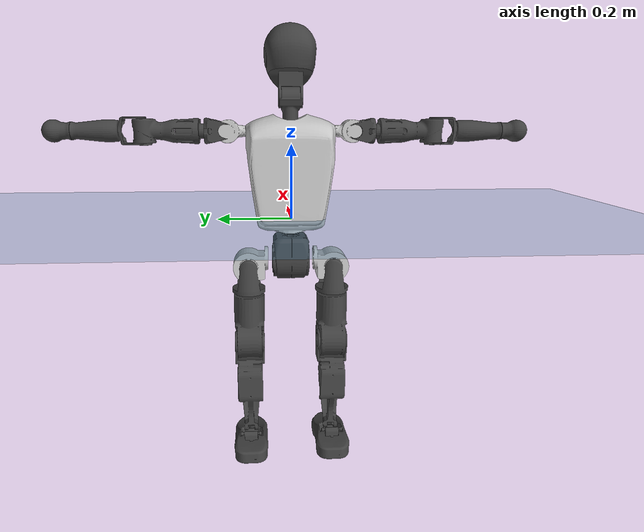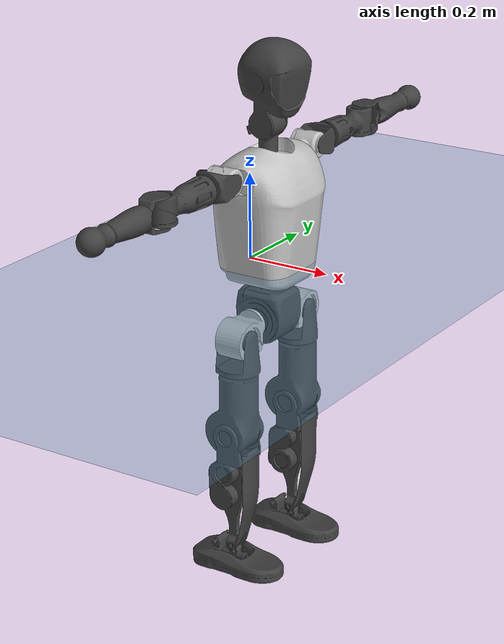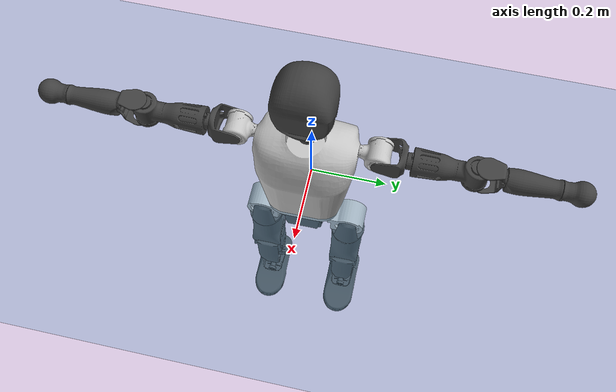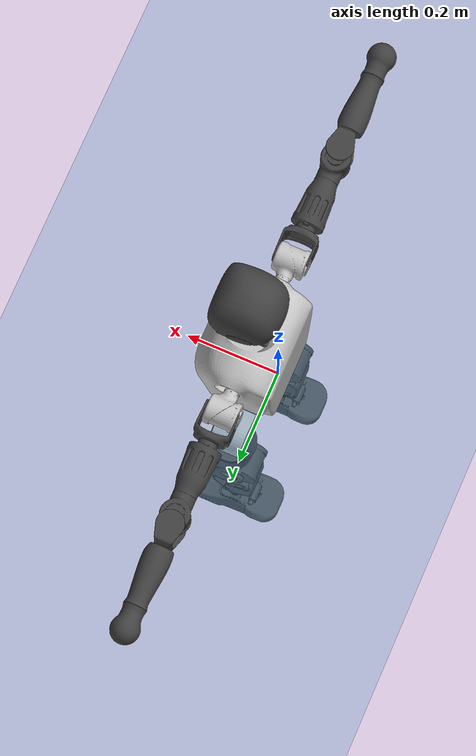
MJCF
<mujoco model="T1">
  <compiler angle="radian" assetdir="assets" balanceinertia="true" inertiafromgeom="false"/>

  <option timestep="0.005" density="1.2" viscosity="2e-05"/>

  <size nkey="1"/>

  <visual>
    <quality shadowsize="8192"/>
    <map shadowclip="0.5"/>
  </visual>

  <default>
    <default class="/">
      <joint armature="0.01" damping="0.01" frictionloss="0.1"/>
      <geom contype="0" conaffinity="0" group="1" solref="-1000 -80"/>
      <site size="0.01 0.005 0.005" group="5"/>
      <general forcelimited="true" biastype="affine" gainprm="25" biasprm="0 -25 -0.6"/>
      <default class="t1">
        <geom rgba="0.25 0.25 0.25 1"/>
        <default class="visual">
          <geom type="mesh" group="2"/>
        </default>
        <default class="collision">
          <geom group="3"/>
        </default>
        <default class="foot">
          <geom size="0.1115 0.05 0.015" type="box" condim="6" group="4" priority="1" solimp="0.015 1 0.015"/>
        </default>
        <default class="reward_collision_sphere">
          <geom group="5" rgba="1 0 0 1"/>
        </default>
      </default>
    </default>
  </default>

  <asset>
    <texture type="skybox" colorspace="auto" name="//unnamed_texture_0" builtin="gradient" rgb1="0.95 0.95 0.95" rgb2="0.95 0.95 0.95" width="100" height="600"/>
    <texture type="2d" colorspace="auto" name="texplane" builtin="checker" rgb1="0.345 0.575 0.748" rgb2="0.345 0.575 0.748" markrgb="1 1 1" width="512" height="512"/>
    <material name="MatPlane" class="/" texture="texplane" texuniform="true" texrepeat="2 2" specular="0.9"/>
    <mesh name="Trunk" class="/" file="Trunk.stl"/>
    <mesh name="H1" class="/" file="H1.stl"/>
    <mesh name="H2" class="/" file="H2.stl"/>
    <mesh name="AL1" class="/" file="AL1.stl"/>
    <mesh name="AL2" class="/" file="AL2.stl"/>
    <mesh name="AL3" class="/" file="AL3.stl"/>
    <mesh name="left_hand_link" class="/" file="left_hand_link.stl"/>
    <mesh name="AR1" class="/" file="AR1.stl"/>
    <mesh name="AR2" class="/" file="AR2.stl"/>
    <mesh name="AR3" class="/" file="AR3.stl"/>
    <mesh name="right_hand_link" class="/" file="right_hand_link.stl"/>
    <mesh name="Waist" class="/" file="Waist.stl"/>
    <mesh name="Hip_Pitch_Left" class="/" file="Hip_Pitch_Left.stl"/>
    <mesh name="Hip_Roll_Left" class="/" file="Hip_Roll_Left.stl"/>
    <mesh name="Hip_Yaw_Left" class="/" file="Hip_Yaw_Left.stl"/>
    <mesh name="Shank_Left" class="/" file="Shank_Left.stl"/>
    <mesh name="Ankle_Cross_Left" class="/" file="Ankle_Cross_Left.stl"/>
    <mesh name="left_foot_link" class="/" file="left_foot_link.stl"/>
    <mesh name="Hip_Pitch_Right" class="/" file="Hip_Pitch_Right.stl"/>
    <mesh name="Hip_Roll_Right" class="/" file="Hip_Roll_Right.stl"/>
    <mesh name="Hip_Yaw_Right" class="/" file="Hip_Yaw_Right.stl"/>
    <mesh name="Shank_Right" class="/" file="Shank_Right.stl"/>
    <mesh name="Ankle_Cross_Right" class="/" file="Ankle_Cross_Right.stl"/>
    <mesh name="right_foot_link" class="/" file="right_foot_link.stl"/>
  </asset>

  <worldbody>
    <geom name="floor" class="/" size="100 100 0.125" type="plane" group="0" material="MatPlane"/>
    <light name="toplight_shadow" class="/" pos="0 0 5" dir="0.0990148 0.0990148 -0.990148" type="directional" ambient="0.04 0.04 0.04" diffuse="0.55 0.55 0.55" specular="0.12 0.12 0.12"/>
    <light name="toplight_fill" class="/" pos="0 0 5" dir="0.0990148 0.0990148 -0.990148" type="directional" castshadow="false" ambient="0.04 0.04 0.04" diffuse="0.3 0.3 0.3" specular="0.08 0.08 0.08"/>
    <body name="trunk" childclass="t1" pos="-2.04155e-05 -8.12324e-05 -0.00024879" quat="1 4.52296e-05 -7.94075e-05 1.90871e-05">
      <inertial pos="0.041882 -0.000179076 0.111676" quat="0.999932 -0.000156719 -0.0109783 -0.00388623" mass="11.661" diaginertia="0.026439 0.151795 0.0761697"/>
      <joint name="//unnamed_joint_0" type="free" armature="0" damping="0" frictionloss="0"/>
      <geom name="//unnamed_geom_1" class="visual" rgba="0.76 0.76 0.76 1" mesh="Trunk"/>
      <geom name="//unnamed_geom_2" class="collision" size="0.074686 0.0995814 0.149372" pos="0.0467324 0 0.127752" type="box"/>
      <geom name="//unnamed_geom_3" class="reward_collision_sphere" size="0.114519" pos="0.0467324 0 0.10646"/>
      <geom name="//unnamed_geom_4" class="reward_collision_sphere" size="0.0149372" pos="0.0467324 0.0972371 0"/>
      <geom name="//unnamed_geom_5" class="reward_collision_sphere" size="0.0149372" pos="0.0467324 -0.0972371 0"/>
      <geom name="//unnamed_geom_6" class="reward_collision_sphere" size="0.0149372" pos="0.0467324 0.122404 0.191628"/>
      <geom name="//unnamed_geom_7" class="reward_collision_sphere" size="0.0149372" pos="0.0467324 -0.122404 0.191628"/>
      <site name="imu" pos="0.00367273 0.00218481 0.00236433" size="0.00995814"/>
      <camera name="track" pos="0 -2.28793 0" quat="0.707107 0.707107 0 0" mode="trackcom"/>
      <camera name="ego_camera" pos="0.0950225 0 0.447133" quat="-0.5 -0.5 0.5 0.5"/>
      <body name="H1" pos="0.0483681 0.000151689 0.257801" quat="1 2.76463e-05 2.64985e-05 -7.15747e-05">
        <inertial pos="-0.00102775 -0.0013946 0.0608536" quat="0.76334 -0.0146352 0.000592767 0.645831" mass="0.443671" diaginertia="6.98569e-05 0.000443885 0.000205917"/>
        <joint name="AAHead_yaw" pos="0 0 0" axis="0.000724642 -0.000559371 1" range="-1.56911 1.57457" armature="0.0100303" damping="0.00526504" frictionloss="0.0962875"/>
        <geom name="//unnamed_geom_8" class="visual" mesh="H1"/>
        <body name="H2" pos="-8.65746e-05 -0.000214751 0.0662145" quat="1 1.1126e-05 -3.67777e-06 -1.09341e-05">
          <inertial pos="0.00529573 0.00113907 0.104709" quat="0.988466 0.1059 -0.0745805 -0.0784783" mass="0.623748" diaginertia="0.000583727 0.00376736 0.0023323"/>
          <joint name="Head_pitch" pos="0 0 0" axis="0.000582667 -0.999998 -0.00168233" range="-1.21959 0.351878" armature="0.0100372" damping="0.00459369" frictionloss="0.103847"/>
          <geom name="//unnamed_geom_9" class="visual" mesh="H2"/>
          <geom name="//unnamed_geom_10" class="collision" size="0.0796651" pos="0.00778873 0 0.117106"/>
          <geom name="//unnamed_geom_11" class="reward_collision_sphere" size="0.0896232" pos="0.0155775 0 0.10646"/>
        </body>
      </body>
      <body name="AL1" pos="0.0464555 0.121917 0.233634" quat="1 4.06419e-07 0.00043304 1.60865e-07">
        <inertial pos="-0.00069084 0.0517106 0.000336281" quat="0.504264 0.495712 -0.504096 0.495858" mass="0.522614" diaginertia="0.000391977 0.00252563 0.000398255"/>
        <joint name="Left_Shoulder_Pitch" pos="0 0 0" axis="-0.000529075 0.999999 -0.00120925" range="-3.29682 1.20984" armature="0.0100024" damping="0.00963892" frictionloss="0.0998523"/>
        <geom name="//unnamed_geom_12" class="visual" rgba="0.76 0.76 0.76 1" mesh="AL1"/>
        <body name="AL2" pos="0.000909666 0.054078 0.000856364" quat="1 0.000223178 0.000446878 -3.83754e-06">
          <inertial pos="0.00277904 0.043571 -0.000892631" quat="0.489428 0.509616 -0.488395 0.512076" mass="0.156728" diaginertia="0.000114786 0.000674247 0.000240052"/>
          <joint name="Left_Shoulder_Roll" pos="0 0 0" axis="-1 0.000551 -0.000357322" stiffness="0.000294345" range="-1.57322 1.74204" armature="0.0101734" damping="0.00371573" frictionloss="0.0974668"/>
          <geom name="//unnamed_geom_13" class="visual" mesh="AL2"/>
          <body name="AL3" pos="0.000729936 0.0703342 -0.00034628" quat="1 -6.83592e-06 1.91689e-05 1.3383e-05">
            <inertial pos="-0.000290244 0.0973827 0.000617806" quat="0.705917 0.708282 0.000210907 -0.00425587" mass="0.989159" diaginertia="0.00363951 0.0249802 0.000847003"/>
            <joint name="Left_Elbow_Pitch" pos="0 0 0" axis="-0.000639279 -0.999998 -0.00186184" range="-2.27081 2.26663" armature="0.00984189" damping="0.00650824" frictionloss="0.0985753"/>
            <geom name="//unnamed_geom_14" class="visual" mesh="AL3"/>
            <geom name="//unnamed_geom_15" class="collision" size="0.0298744 0.074686" pos="0 0.0571983 0" quat="0.707105 0.707108 0 0" type="cylinder"/>
            <geom name="//unnamed_geom_16" class="reward_collision_sphere" size="0.0358493"/>
            <body name="left_hand_link" pos="0.000119879 0.168628 0.000771178" quat="1 -3.35144e-05 1.80434e-05 9.14625e-05">
              <inertial pos="-0.00040374 0.12553 0.000186816" quat="0.706769 0.707442 -0.00119605 -0.00101241" mass="0.323922" diaginertia="0.00235728 0.0159057 0.000293996"/>
              <joint name="Left_Elbow_Yaw" pos="0 0 0" axis="0.00102451 -0.000449643 0.999999" range="-2.44279 0.0067796" armature="0.00997742" damping="0.00648936" frictionloss="0.0959407"/>
              <geom name="//unnamed_geom_17" class="visual" mesh="left_hand_link"/>
              <geom name="//unnamed_geom_18" class="collision" size="0.0298744 0.0871337" pos="0 0.148716 0" quat="0.707105 0.707108 0 0" type="cylinder"/>
              <geom name="//unnamed_geom_19" class="reward_collision_sphere" size="0.0497907"/>
              <geom name="//unnamed_geom_20" class="reward_collision_sphere" size="0.0348535" pos="0 0.125836 0"/>
              <geom name="//unnamed_geom_21" class="reward_collision_sphere" size="0.0348535" pos="0 0.245953 0"/>
            </body>
          </body>
        </body>
      </body>
      <body name="AR1" pos="0.0451796 -0.121129 0.233802" quat="1 0.000251341 0.000215696 4.58606e-05">
        <inertial pos="-0.00015076 -0.0515304 -8.02173e-06" quat="0.504195 0.495496 -0.504359 0.495876" mass="0.51942" diaginertia="0.000391219 0.00251668 0.000395539"/>
        <joint name="Right_Shoulder_Pitch" pos="0 0 0" axis="-0.00255138 -0.999997 -0.000546492" range="-1.22675 3.30514" armature="0.00987902" damping="0.00722557" frictionloss="0.0987023"/>
        <geom name="//unnamed_geom_22" class="visual" rgba="0.76 0.76 0.76 1" mesh="AR1"/>
        <body name="AR2" pos="-0.000670898 -0.0531239 -0.00015347" quat="1 9.74212e-05 -5.66939e-05 -1.27638e-05">
          <inertial pos="0.00368162 -0.0438651 0.000786294" quat="0.511799 0.488154 -0.511565 0.487923" mass="0.15771" diaginertia="0.000114044 0.000677947 0.000239436"/>
          <joint name="Right_Shoulder_Roll" pos="0 0 0" axis="-0.999977 0.00574358 0.00359373" range="-1.73837 1.56842" armature="0.00992662" damping="0.00440882" frictionloss="0.101938"/>
          <geom name="//unnamed_geom_23" class="visual" mesh="AR2"/>
          <body name="AR3" pos="0.000464134 -0.0698761 -0.000115876" quat="1 0.000212901 -0.000399534 0.000165882">
            <inertial pos="7.26514e-05 -0.0973747 -0.000411239" quat="0.706913 0.707289 0.00273135 0.00304887" mass="0.996715" diaginertia="0.00365055 0.0247358 0.000838874"/>
            <joint name="Right_Elbow_Pitch" pos="0 0 0" axis="-0.00128616 0.999999 -0.000595717" range="-2.27085 2.27611" armature="0.00988176" damping="0.00724287" frictionloss="0.101398"/>
            <geom name="//unnamed_geom_24" class="visual" mesh="AR3"/>
            <geom name="//unnamed_geom_25" class="collision" size="0.0298744 0.074686" pos="0 -0.0571983 0" quat="0.707105 0.707108 0 0" type="cylinder"/>
            <geom name="//unnamed_geom_26" class="reward_collision_sphere" size="0.0358493"/>
            <body name="right_hand_link" pos="4.59611e-05 -0.168244 -2.80065e-05" quat="1 4.08785e-06 -0.000362908 2.14103e-05">
              <inertial pos="0.000176896 -0.126075 0.000818993" quat="0.706981 0.707229 0.00163871 -0.00140789" mass="0.318616" diaginertia="0.00233049 0.0158795 0.000292956"/>
              <joint name="Right_Elbow_Yaw" pos="0 0 0" axis="0.0017223 -0.00010465 0.999999" stiffness="0.000292133" range="-0.0172806 2.43474" armature="0.010118" damping="0.00723916" frictionloss="0.0996693"/>
              <geom name="//unnamed_geom_27" class="visual" mesh="right_hand_link"/>
              <geom name="//unnamed_geom_28" class="collision" size="0.0298744 0.0871337" pos="0 -0.148716 0" quat="0.707105 0.707108 0 0" type="cylinder"/>
              <geom name="//unnamed_geom_29" class="reward_collision_sphere" size="0.0497907"/>
              <geom name="//unnamed_geom_30" class="reward_collision_sphere" size="0.0348535" pos="0 -0.125836 0"/>
              <geom name="//unnamed_geom_31" class="reward_collision_sphere" size="0.0348535" pos="0 -0.245953 0"/>
            </body>
          </body>
        </body>
      </body>
      <body name="Waist" pos="0.0497059 -0.00121733 -0.123642" quat="1 -5.19946e-06 3.41539e-05 -4.05484e-05">
        <inertial pos="0.000922779 4.73759e-06 0.008274" quat="0.983643 -0.000538791 -0.180104 0.00302763" mass="2.59902" diaginertia="0.0015452 0.0104967 0.00655892"/>
        <joint name="Waist" pos="0 0 0" axis="-0.000144629 0.000502192 1" range="-1.55733 1.57083" armature="0.00954787" damping="0.00988257" frictionloss="0.0993146"/>
        <geom name="//unnamed_geom_32" class="visual" mesh="Waist"/>
        <body name="Hip_Pitch_Left" pos="0.000723596 0.120835 -0.00079193" quat="1 -7.87182e-05 2.74256e-05 0.000310536">
          <inertial pos="0.000552443 -0.00924407 -0.0202759" quat="0.974954 0.221746 0.0164065 0.00486229" mass="1.00884" diaginertia="0.000518285 0.00282838 0.001711"/>
          <joint name="Left_Hip_Pitch" pos="0 0 0" axis="-0.00148608 0.999999 0.000396765" range="-1.80018 1.56973" armature="0.0100809" damping="0.00669801" frictionloss="0.100258"/>
          <geom name="//unnamed_geom_33" class="visual" rgba="0.76 0.76 0.76 1" mesh="Hip_Pitch_Left"/>
          <body name="Hip_Roll_Left" pos="3.0749e-06 0.000757613 -0.0214039" quat="1 -5.7567e-05 -5.39478e-05 -1.42085e-05">
            <inertial pos="0.00158464 -0.000168534 -0.0576563" quat="0.706985 -0.00517964 -0.00668573 0.707178" mass="0.380132" diaginertia="0.000504504 0.00295482 0.00070465"/>
            <joint name="Left_Hip_Roll" pos="0 0 0" axis="-0.999991 0.00148897 0.00401778" range="-1.56894 0.2097" armature="0.00989259" damping="0.00933605" frictionloss="0.103221"/>
            <geom name="//unnamed_geom_34" class="visual" mesh="Hip_Roll_Left"/>
            <geom name="//unnamed_geom_35" class="reward_collision_sphere" size="0.0547697"/>
            <body name="Hip_Yaw_Left" pos="0.00146558 -0.000218212 -0.0876842" quat="1 8.04013e-05 0.000132276 -0.000110514">
              <inertial pos="-0.00478867 0.000224569 -0.0954196" quat="0.697063 -0.0334919 -0.0317266 0.715525" mass="2.12334" diaginertia="0.00738717 0.0494223 0.00354995"/>
              <joint name="Left_Hip_Yaw" pos="0 0 0" axis="-0.000683834 0.000510245 -1" range="-0.988835 1.00133" armature="0.00999345" damping="0.0128765" frictionloss="0.100287"/>
              <geom name="//unnamed_geom_36" class="visual" mesh="Hip_Yaw_Left"/>
              <geom name="//unnamed_geom_37" class="collision" size="0.0497907 0.0796651" type="cylinder"/>
              <body name="Shank_Left" pos="-0.0100459 8.76761e-05 -0.144404" quat="1 -4.7608e-05 7.91519e-05 -3.32096e-05">
                <inertial pos="-0.00508777 4.5143e-06 -0.132857" quat="0.997566 0.00142438 -0.0241495 0.0653992" mass="1.69508" diaginertia="0.00994089 0.0677115 0.00255623"/>
                <joint name="Left_Knee_Pitch" pos="0 0 0" axis="0.00211395 0.999985 0.00507849" range="-0.0108859 2.34791" armature="0.00996634" damping="0.00915623" frictionloss="0.0972996"/>
                <geom name="//unnamed_geom_38" class="visual" mesh="Shank_Left"/>
                <geom name="//unnamed_geom_39" class="collision" size="0.0497907 0.074686" pos="0 0 -0.127752" type="cylinder"/>
                <geom name="//unnamed_geom_40" class="reward_collision_sphere" size="0.0647279"/>
                <body name="Ankle_Cross_Left" pos="-0.000537371 -0.000377126 -0.299306" quat="1 -3.62455e-05 2.00273e-05 -1.9334e-05">
                  <inertial pos="-0.00252139 -0.000764125 -0.00922449" quat="0.44189 0.554289 0.549369 0.442369" mass="0.0716115" diaginertia="8.27591e-06 5.09285e-05 1.55439e-05"/>
                  <joint name="Left_Ankle_Pitch" pos="0 0 0" axis="-0.000441143 1 0.00014729" range="-0.872941 0.354717" armature="0.0102308" damping="0.00811664" frictionloss="0.101411"/>
                  <geom name="//unnamed_geom_41" class="visual" mesh="Ankle_Cross_Left"/>
                  <body name="left_foot_link" pos="-0.00131098 0.000778414 -0.0135787" quat="1 6.43392e-05 7.47903e-05 -0.000182555">
                    <inertial pos="0.000667115 6.56105e-05 -0.00904675" quat="-0.00133884 0.620114 0.000821875 0.78451" mass="0.677795" diaginertia="0.000779915 0.00465393 0.00302903"/>
                    <joint name="Left_Ankle_Roll" pos="0 0 0" axis="-0.999999 -0.000833133 -0.00127222" range="-0.438003 0.439842" armature="0.00997215" damping="0.00892154" frictionloss="0.0996422"/>
                    <geom name="//unnamed_geom_42" class="visual" mesh="left_foot_link"/>
                    <geom name="left_foot" class="foot" size="0.105383 0.0509459 0.0150991" pos="0.00778873 0 -0.015969"/>
                    <geom name="//unnamed_geom_44" class="reward_collision_sphere" size="0.0517823" pos="0.00778873 0 -0.015969"/>
                    <geom name="//unnamed_geom_45" class="reward_collision_sphere" size="0.0298744" pos="0.0739929 -0.0263112 -0.015969"/>
                    <geom name="//unnamed_geom_46" class="reward_collision_sphere" size="0.0298744" pos="-0.0545211 -0.0263112 -0.015969"/>
                    <site name="left_foot" class="foot" pos="0.00778873 0 -0.015969" size="0.00995814"/>
                  </body>
                </body>
              </body>
            </body>
          </body>
        </body>
        <body name="Hip_Pitch_Right" pos="-0.000628924 -0.120953 -0.000513849" quat="1 -0.000207011 -0.000251972 -0.000161914">
          <inertial pos="0.00114366 0.00832741 -0.0194604" quat="0.973611 -0.227625 0.0152117 -0.0060272" mass="0.99693" diaginertia="0.0005122 0.00281952 0.00167697"/>
          <joint name="Right_Hip_Pitch" pos="0 0 0" axis="0.000611854 -0.999999 0.00129294" stiffness="0.00124959" range="-1.57396 1.79068" armature="0.0103881" damping="0.00652977" frictionloss="0.099448"/>
          <geom name="//unnamed_geom_47" class="visual" rgba="0.76 0.76 0.76 1" mesh="Hip_Pitch_Right"/>
          <body name="Hip_Roll_Right" pos="-2.27429e-05 0.000164057 -0.0203088" quat="1 8.5332e-05 4.21794e-05 0.000220094">
            <inertial pos="0.000998741 0.000132247 -0.0580227" quat="0.707311 -0.00497099 -0.00628602 0.706857" mass="0.378361" diaginertia="0.000499532 0.00294418 0.00070178"/>
            <joint name="Right_Hip_Roll" pos="0 0 0" axis="-0.999995 0.00304389 0.000866642" range="-0.190423 1.55877" armature="0.00998584" damping="0.00707857" frictionloss="0.0964525"/>
            <geom name="//unnamed_geom_48" class="visual" mesh="Hip_Roll_Right"/>
            <geom name="//unnamed_geom_49" class="reward_collision_sphere" size="0.0547697"/>
            <body name="Hip_Yaw_Right" pos="-0.000455607 -0.000559365 -0.0869573" quat="1 -8.03598e-05 -3.68779e-06 -1.10453e-05">
              <inertial pos="-0.00508171 0.000299093 -0.0951113" quat="0.714181 -0.031754 -0.0347511 0.698376" mass="2.1666" diaginertia="0.00741551 0.049432 0.00360304"/>
              <joint name="Right_Hip_Yaw" pos="0 0 0" axis="0.000987199 -0.00755515 -0.999971" range="-1.00352 1.01087" armature="0.00971868" damping="0.00433363" frictionloss="0.0994392"/>
              <geom name="//unnamed_geom_50" class="visual" mesh="Hip_Yaw_Right"/>
              <geom name="//unnamed_geom_51" class="collision" size="0.0497907 0.0796651" type="cylinder"/>
              <body name="Shank_Right" pos="-0.0112294 -0.000134541 -0.142866" quat="1 0.000213946 0.000180438 0.000324941">
                <inertial pos="-0.00482073 -0.000494424 -0.129857" quat="0.999249 -0.00100647 -0.0244865 -0.0300103" mass="1.78112" diaginertia="0.0100886 0.0695441 0.00270738"/>
                <joint name="Right_Knee_Pitch" pos="0 0 0" axis="0.0010145 -0.999953 -0.00966993" range="-2.34368 -0.000653564" armature="0.0101299" damping="0.0049625" frictionloss="0.0999092"/>
                <geom name="//unnamed_geom_52" class="visual" mesh="Shank_Right"/>
                <geom name="//unnamed_geom_53" class="collision" size="0.0497907 0.074686" pos="0 0 -0.127752" type="cylinder"/>
                <geom name="//unnamed_geom_54" class="reward_collision_sphere" size="0.0647279"/>
                <body name="Ankle_Cross_Right" pos="0.000681875 2.32375e-05 -0.298169" quat="1 -0.000125136 -4.18038e-05 -1.64764e-05">
                  <inertial pos="-0.00291926 0.000990487 -0.0085321" quat="0.443368 0.550734 0.551052 0.443238" mass="0.0717135" diaginertia="8.18177e-06 4.95217e-05 1.53759e-05"/>
                  <joint name="Right_Ankle_Pitch" pos="0 0 0" axis="0.00144017 -0.999998 -0.00153609" range="-0.340523 0.876407" armature="0.00998142" damping="0.00607753" frictionloss="0.0973055"/>
                  <geom name="//unnamed_geom_55" class="visual" mesh="Ankle_Cross_Right"/>
                  <body name="right_foot_link" pos="9.46593e-05 -0.000823177 -0.0122251" quat="1 -1.16884e-05 -4.83952e-06 -3.14293e-06">
                    <inertial pos="-0.000348105 -0.000419627 -0.00959688" quat="-0.000233151 0.620944 0.00055316 0.783854" mass="0.67769" diaginertia="0.000774533 0.00472061 0.00298141"/>
                    <joint name="Right_Ankle_Roll" pos="0 0 0" axis="-0.999987 0.00381906 -0.00332339" range="-0.441307 0.439591" armature="0.00990618" damping="0.00589881" frictionloss="0.0998308"/>
                    <geom name="//unnamed_geom_56" class="visual" mesh="right_foot_link"/>
                    <geom name="right_foot" class="foot" size="0.103049 0.0498377 0.0154365" pos="0.00778873 0 -0.015969"/>
                    <geom name="//unnamed_geom_58" class="reward_collision_sphere" size="0.0398325"/>
                    <geom name="//unnamed_geom_59" class="reward_collision_sphere" size="0.0298744" pos="0.00778873 0 -0.015969"/>
                    <geom name="//unnamed_geom_60" class="reward_collision_sphere" size="0.0298744" pos="0.0739929 0.0263112 -0.015969"/>
                    <geom name="//unnamed_geom_61" class="reward_collision_sphere" size="0.0298744" pos="-0.0545211 0.0263112 -0.015969"/>
                    <site name="right_foot" class="foot" pos="0.00778873 0 -0.015969" size="0.00995814"/>
                  </body>
                </body>
              </body>
            </body>
          </body>
        </body>
      </body>
    </body>
  </worldbody>

  <contact>
    <pair class="/" geom1="floor" geom2="left_foot" name="//unnamed_contact_0"/>
    <pair class="/" geom1="floor" geom2="right_foot" name="//unnamed_contact_1"/>
  </contact>

  <actuator>
    <general name="AAHead_yaw" class="/" joint="AAHead_yaw" forcerange="-7.0897 7.0897" gainprm="25.3891" biasprm="0 -25.3891 -0.585712"/>
    <general name="Head_pitch" class="/" joint="Head_pitch" forcerange="-6.98661 6.98661" gainprm="25.3891" biasprm="0 -25.3891 -0.585712"/>
    <general name="Left_Shoulder_Pitch" class="/" joint="Left_Shoulder_Pitch" forcerange="-18.3656 18.3656" gainprm="25.3891" biasprm="0 -25.3891 -0.585712"/>
    <general name="Left_Shoulder_Roll" class="/" joint="Left_Shoulder_Roll" forcerange="-17.6348 17.6348" gainprm="25.3891" biasprm="0 -25.3891 -0.585712"/>
    <general name="Left_Elbow_Pitch" class="/" joint="Left_Elbow_Pitch" forcerange="-18.1065 18.1065" gainprm="25.3891" biasprm="0 -25.3891 -0.585712"/>
    <general name="Left_Elbow_Yaw" class="/" joint="Left_Elbow_Yaw" forcerange="-17.8722 17.8722" gainprm="25.3891" biasprm="0 -25.3891 -0.585712"/>
    <general name="Right_Shoulder_Pitch" class="/" joint="Right_Shoulder_Pitch" forcerange="-18.1949 18.1949" gainprm="25.3891" biasprm="0 -25.3891 -0.585712"/>
    <general name="Right_Shoulder_Roll" class="/" joint="Right_Shoulder_Roll" forcerange="-18.4145 18.4145" gainprm="25.3891" biasprm="0 -25.3891 -0.585712"/>
    <general name="Right_Elbow_Pitch" class="/" joint="Right_Elbow_Pitch" forcerange="-17.9332 17.9332" gainprm="25.3891" biasprm="0 -25.3891 -0.585712"/>
    <general name="Right_Elbow_Yaw" class="/" joint="Right_Elbow_Yaw" forcerange="-17.9765 17.9765" gainprm="25.3891" biasprm="0 -25.3891 -0.585712"/>
    <general name="Waist" class="/" joint="Waist" forcerange="-29.9292 29.9292" gainprm="25.3891" biasprm="0 -25.3891 -0.585712"/>
    <general name="Left_Hip_Pitch" class="/" joint="Left_Hip_Pitch" forcerange="-44.9767 44.9767" gainprm="25.3891" biasprm="0 -25.3891 -0.585712"/>
    <general name="Left_Hip_Roll" class="/" joint="Left_Hip_Roll" forcerange="-29.0034 29.0034" gainprm="25.3891" biasprm="0 -25.3891 -0.585712"/>
    <general name="Left_Hip_Yaw" class="/" joint="Left_Hip_Yaw" forcerange="-30.6439 30.6439" gainprm="25.3891" biasprm="0 -25.3891 -0.585712"/>
    <general name="Left_Knee_Pitch" class="/" joint="Left_Knee_Pitch" forcerange="-59.428 59.428" gainprm="25.3891" biasprm="0 -25.3891 -0.585712"/>
    <general name="Left_Ankle_Pitch" class="/" joint="Left_Ankle_Pitch" forcerange="-19.8839 19.8839" gainprm="25.3891" biasprm="0 -25.3891 -0.585712"/>
    <general name="Left_Ankle_Roll" class="/" joint="Left_Ankle_Roll" forcerange="-14.7158 14.7158" gainprm="25.3891" biasprm="0 -25.3891 -0.585712"/>
    <general name="Right_Hip_Pitch" class="/" joint="Right_Hip_Pitch" forcerange="-44.7928 44.7928" gainprm="25.3891" biasprm="0 -25.3891 -0.585712"/>
    <general name="Right_Hip_Roll" class="/" joint="Right_Hip_Roll" forcerange="-30.0036 30.0036" gainprm="25.3891" biasprm="0 -25.3891 -0.585712"/>
    <general name="Right_Hip_Yaw" class="/" joint="Right_Hip_Yaw" forcerange="-30.0883 30.0883" gainprm="25.3891" biasprm="0 -25.3891 -0.585712"/>
    <general name="Right_Knee_Pitch" class="/" joint="Right_Knee_Pitch" forcerange="-59.6089 59.6089" gainprm="25.3891" biasprm="0 -25.3891 -0.585712"/>
    <general name="Right_Ankle_Pitch" class="/" joint="Right_Ankle_Pitch" forcerange="-19.6482 19.6482" gainprm="25.3891" biasprm="0 -25.3891 -0.585712"/>
    <general name="Right_Ankle_Roll" class="/" joint="Right_Ankle_Roll" forcerange="-15.385 15.385" gainprm="25.3891" biasprm="0 -25.3891 -0.585712"/>
  </actuator>

  <sensor>
    <gyro site="imu" name="imu_angular_velocity"/>
    <velocimeter site="imu" name="imu_linear_velocity"/>
    <framelinvel objtype="site" objname="left_foot" name="left_foot_global_linear_velocity"/>
    <framelinvel objtype="site" objname="right_foot" name="right_foot_global_linear_velocity"/>
  </sensor>

  <keyframe>
    <key name="home" qpos="0 0 0.6385 1 0 0 0 0 0 0 1.4 0 -0.4 0 -1.4 0 0.4 0 -0.4 0 0 0.8 -0.4 0 0.4 0 0 -0.8 0.4 0"/>
  </keyframe>
</mujoco>
